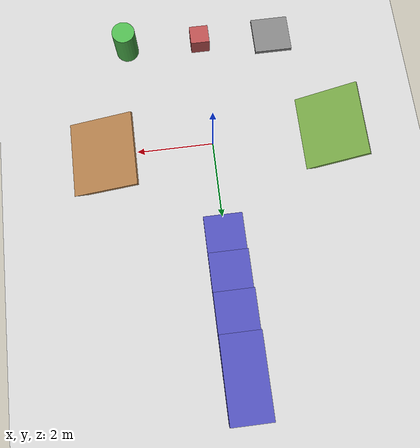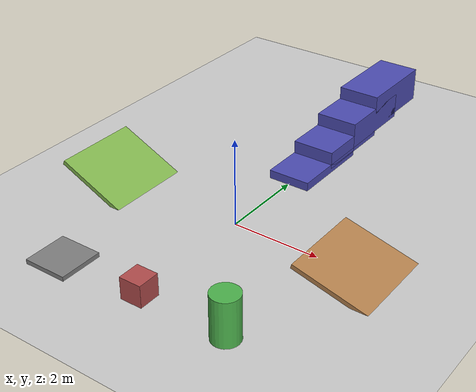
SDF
<?xml version="1.0" ?>
<sdf version="1.7">
  <world name="training_world">

    <!-- 基本世界设置 -->
    <scene>
      <sky>
        <clouds>
          <speed>12</speed>
        </clouds>
      </sky>
      <ambient>0.4 0.4 0.4 1</ambient>
      <background>0.7 0.7 0.7 1</background>
      <shadows>1</shadows>
    </scene>

    <!-- 物理设置 -->
    <physics type="ode">
      <max_step_size>0.001</max_step_size>
      <real_time_factor>1.0</real_time_factor>
      <real_time_update_rate>1000</real_time_update_rate>
    </physics>

    <!-- 光照设置 -->
    <light type="directional" name="sun">
      <cast_shadows>true</cast_shadows>
      <pose>0 0 10 0 0 0</pose>
      <diffuse>0.8 0.8 0.8 1</diffuse>
      <specular>0.2 0.2 0.2 1</specular>
      <direction>-0.5 0.1 -0.9</direction>
    </light>

    <!-- 额外的光照 -->
    <light type="directional" name="light2">
      <cast_shadows>false</cast_shadows>
      <pose>0 0 10 0 0 0</pose>
      <diffuse>0.4 0.4 0.4 1</diffuse>
      <specular>0.1 0.1 0.1 1</specular>
      <direction>0.5 -0.1 -0.9</direction>
    </light>

    <!-- 重力设置 -->
    <gravity>0 0 -9.81</gravity>

    <!-- 地面 -->
    <model name="ground_plane">
      <static>true</static>
      <link name="link">
        <collision name="collision">
          <geometry>
            <plane>
              <normal>0 0 1</normal>
              <size>100 100</size>
            </plane>
          </geometry>
          <surface>
            <friction>
              <ode>
                <mu>0.6</mu>
                <mu2>0.6</mu2>
              </ode>
            </friction>
          </surface>
        </collision>
        <visual name="visual">
          <geometry>
            <plane>
              <normal>0 0 1</normal>
              <size>100 100</size>
            </plane>
          </geometry>
          <material>
            <ambient>0.8 0.8 0.8 1</ambient>
            <diffuse>0.8 0.8 0.8 1</diffuse>
            <specular>0.8 0.8 0.8 1</specular>
          </material>
        </visual>
      </link>
    </model>

    <!-- 斜坡1 - 15度角 -->
    <model name="ramp_15deg">
      <static>true</static>
      <pose>3 0 0.13 0 0.262 0</pose>
      <link name="link">
        <collision name="collision">
          <geometry>
            <box>
              <size>2 2 0.1</size>
            </box>
          </geometry>
          <surface>
            <friction>
              <ode>
                <mu>0.8</mu>
                <mu2>0.8</mu2>
              </ode>
            </friction>
          </surface>
        </collision>
        <visual name="visual">
          <geometry>
            <box>
              <size>2 2 0.1</size>
            </box>
          </geometry>
          <material>
            <ambient>0.7 0.5 0.3 1</ambient>
            <diffuse>0.7 0.5 0.3 1</diffuse>
            <specular>0.7 0.5 0.3 1</specular>
          </material>
        </visual>
      </link>
    </model>

    <!-- 斜坡2 - 25度角 -->
    <model name="ramp_25deg">
      <static>true</static>
      <pose>-3 0 0.23 0 0.436 0</pose>
      <link name="link">
        <collision name="collision">
          <geometry>
            <box>
              <size>2 2 0.1</size>
            </box>
          </geometry>
          <surface>
            <friction>
              <ode>
                <mu>0.8</mu>
                <mu2>0.8</mu2>
              </ode>
            </friction>
          </surface>
        </collision>
        <visual name="visual">
          <geometry>
            <box>
              <size>2 2 0.1</size>
            </box>
          </geometry>
          <material>
            <ambient>0.5 0.7 0.3 1</ambient>
            <diffuse>0.5 0.7 0.3 1</diffuse>
            <specular>0.5 0.7 0.3 1</specular>
          </material>
        </visual>
      </link>
    </model>

    <!-- 楼梯 -->
    <!-- 第一级台阶 -->
    <model name="stair_1">
      <static>true</static>
      <pose>0 3 0.1 0 0 0</pose>
      <link name="link">
        <collision name="collision">
          <geometry>
            <box>
              <size>1 2 0.2</size>
            </box>
          </geometry>
          <surface>
            <friction>
              <ode>
                <mu>0.8</mu>
                <mu2>0.8</mu2>
              </ode>
            </friction>
          </surface>
        </collision>
        <visual name="visual">
          <geometry>
            <box>
              <size>1 2 0.2</size>
            </box>
          </geometry>
          <material>
            <ambient>0.3 0.3 0.7 1</ambient>
            <diffuse>0.3 0.3 0.7 1</diffuse>
            <specular>0.3 0.3 0.7 1</specular>
          </material>
        </visual>
      </link>
    </model>

    <!-- 第二级台阶 -->
    <model name="stair_2">
      <static>true</static>
      <pose>0 4 0.3 0 0 0</pose>
      <link name="link">
        <collision name="collision">
          <geometry>
            <box>
              <size>1 2 0.4</size>
            </box>
          </geometry>
          <surface>
            <friction>
              <ode>
                <mu>0.8</mu>
                <mu2>0.8</mu2>
              </ode>
            </friction>
          </surface>
        </collision>
        <visual name="visual">
          <geometry>
            <box>
              <size>1 2 0.4</size>
            </box>
          </geometry>
          <material>
            <ambient>0.3 0.3 0.7 1</ambient>
            <diffuse>0.3 0.3 0.7 1</diffuse>
            <specular>0.3 0.3 0.7 1</specular>
          </material>
        </visual>
      </link>
    </model>

    <!-- 第三级台阶 -->
    <model name="stair_3">
      <static>true</static>
      <pose>0 5 0.5 0 0 0</pose>
      <link name="link">
        <collision name="collision">
          <geometry>
            <box>
              <size>1 2 0.6</size>
            </box>
          </geometry>
          <surface>
            <friction>
              <ode>
                <mu>0.8</mu>
                <mu2>0.8</mu2>
              </ode>
            </friction>
          </surface>
        </collision>
        <visual name="visual">
          <geometry>
            <box>
              <size>1 2 0.6</size>
            </box>
          </geometry>
          <material>
            <ambient>0.3 0.3 0.7 1</ambient>
            <diffuse>0.3 0.3 0.7 1</diffuse>
            <specular>0.3 0.3 0.7 1</specular>
          </material>
        </visual>
      </link>
    </model>

    <!-- 第四级台阶 -->
    <model name="stair_4">
      <static>true</static>
      <pose>0 6 0.7 0 0 0</pose>
      <link name="link">
        <collision name="collision">
          <geometry>
            <box>
              <size>1 2 0.8</size>
            </box>
          </geometry>
          <surface>
            <friction>
              <ode>
                <mu>0.8</mu>
                <mu2>0.8</mu2>
              </ode>
            </friction>
          </surface>
        </collision>
        <visual name="visual">
          <geometry>
            <box>
              <size>1 2 0.8</size>
            </box>
          </geometry>
          <material>
            <ambient>0.3 0.3 0.7 1</ambient>
            <diffuse>0.3 0.3 0.7 1</diffuse>
            <specular>0.3 0.3 0.7 1</specular>
          </material>
        </visual>
      </link>
    </model>

    <!-- 障碍物 - 小方块 -->
    <model name="obstacle_box">
      <static>true</static>
      <pose>0 -3 0.25 0 0 0</pose>
      <link name="link">
        <collision name="collision">
          <geometry>
            <box>
              <size>0.5 0.5 0.5</size>
            </box>
          </geometry>
          <surface>
            <friction>
              <ode>
                <mu>0.8</mu>
                <mu2>0.8</mu2>
              </ode>
            </friction>
          </surface>
        </collision>
        <visual name="visual">
          <geometry>
            <box>
              <size>0.5 0.5 0.5</size>
            </box>
          </geometry>
          <material>
            <ambient>0.7 0.3 0.3 1</ambient>
            <diffuse>0.7 0.3 0.3 1</diffuse>
            <specular>0.7 0.3 0.3 1</specular>
          </material>
        </visual>
      </link>
    </model>

    <!-- 圆柱形障碍物 -->
    <model name="obstacle_cylinder">
      <static>true</static>
      <pose>2 -3 0.5 0 0 0</pose>
      <link name="link">
        <collision name="collision">
          <geometry>
            <cylinder>
              <radius>0.3</radius>
              <length>1.0</length>
            </cylinder>
          </geometry>
          <surface>
            <friction>
              <ode>
                <mu>0.8</mu>
                <mu2>0.8</mu2>
              </ode>
            </friction>
          </surface>
        </collision>
        <visual name="visual">
          <geometry>
            <cylinder>
              <radius>0.3</radius>
              <length>1.0</length>
            </cylinder>
          </geometry>
          <material>
            <ambient>0.3 0.7 0.3 1</ambient>
            <diffuse>0.3 0.7 0.3 1</diffuse>
            <specular>0.3 0.7 0.3 1</specular>
          </material>
        </visual>
      </link>
    </model>

    <!-- 不平整地面 -->
    <model name="uneven_ground">
      <static>true</static>
      <pose>-2 -3 0.05 0 0 0</pose>
      <link name="link">
        <collision name="collision">
          <geometry>
            <box>
              <size>1 1 0.1</size>
            </box>
          </geometry>
          <surface>
            <friction>
              <ode>
                <mu>0.6</mu>
                <mu2>0.6</mu2>
              </ode>
            </friction>
          </surface>
        </collision>
        <visual name="visual">
          <geometry>
            <box>
              <size>1 1 0.1</size>
            </box>
          </geometry>
          <material>
            <ambient>0.5 0.5 0.5 1</ambient>
            <diffuse>0.5 0.5 0.5 1</diffuse>
            <specular>0.5 0.5 0.5 1</specular>
          </material>
        </visual>
      </link>
    </model>

  </world>
</sdf>
